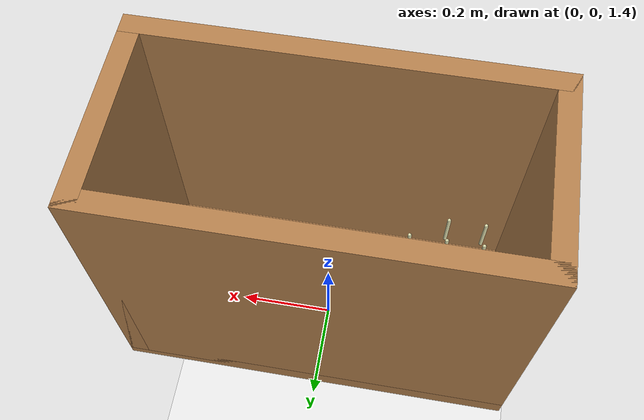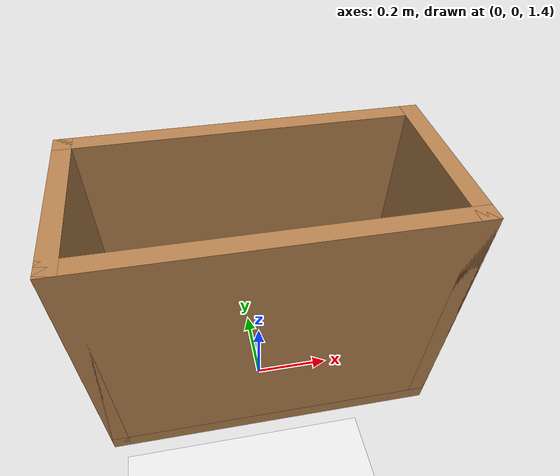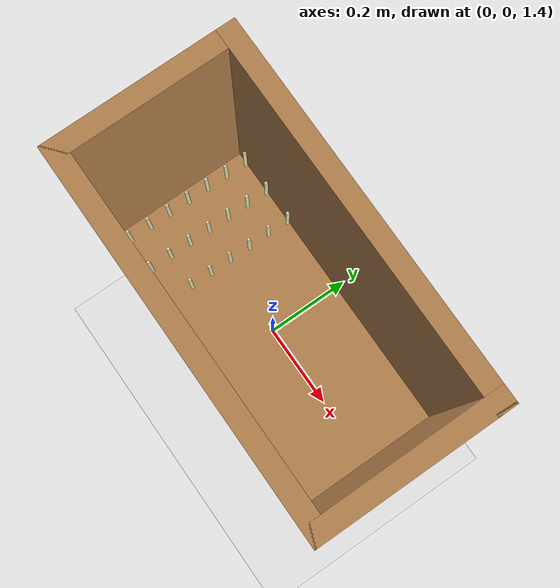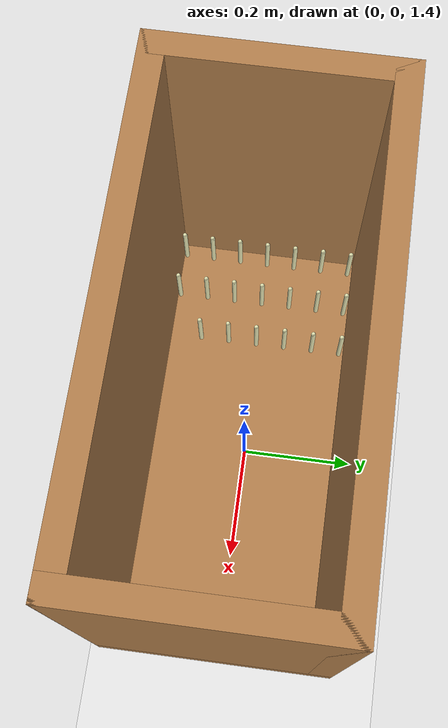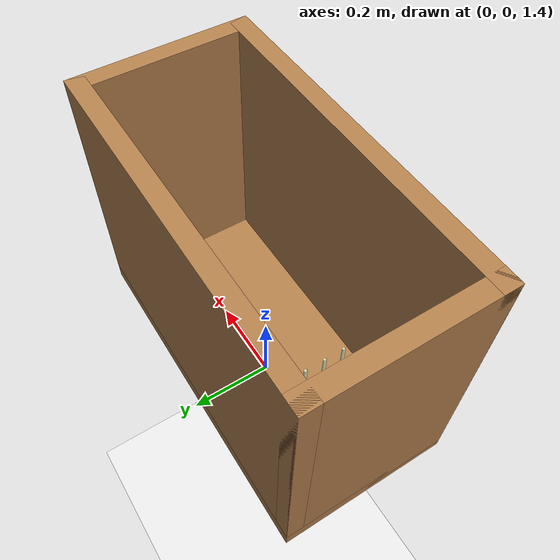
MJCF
<mujoco model="rods_falling">
    <option timestep="0.002" iterations="20" solver="Newton">
        <flag warmstart="enable" energy="enable" contact="enable" />
    </option>

    <asset>
        <material name="floor" rgba="0.9 0.9 0.9 1" reflectance="0.2" />
        <material name="box" rgba="0.7 0.5 0.3 1" />
        <material name="rod" rgba="0.9 0.9 0.7 1" />
    </asset>

    <default>
        <geom friction="1.0 0.005 0.0001" condim="6" />
        <joint damping="0.05" />
    </default>

    <worldbody>
        <!-- Floor -->
        <geom name="floor" type="plane" size="3 3 0.1" pos="0 0 0" material="floor" />

        <!-- Fixed light sources -->
        <light pos="0 0 3" dir="0 0 -1" diffuse="0.7 0.7 0.7" specular="0.3 0.3 0.3" />
        <light pos="3 3 3" dir="-1 -1 -1" diffuse="0.3 0.3 0.3" specular="0.1 0.1 0.1" />

        <!-- Box - created with 5 sides (no top) -->
        <body name="box" pos="0 0 1.5">
            <!-- Box base -->
            <geom name="box_base" type="box" size="0.4 0.2 0.02" pos="0 0 0" material="box" />
            <!-- Box sides -->
            <geom name="box_side1" type="box" size="0.4 0.02 0.3" pos="0 0.18 0.3" material="box" />
            <geom name="box_side2" type="box" size="0.4 0.02 0.3" pos="0 -0.18 0.3" material="box" />
            <geom name="box_side3" type="box" size="0.02 0.2 0.3" pos="0.38 0 0.3" material="box" />
            <geom name="box_side4" type="box" size="0.02 0.2 0.3" pos="-0.38 0 0.3" material="box" />

            <!-- Joint to tilt the box after a delay -->
            <joint name="box_hinge" type="hinge" axis="1 0 0" limited="true" range="-1.57 0" />
        </body>

        <!-- Rods (20 thin cylinders) -->
        <body name="rod1" pos="-0.32 0.15 1.6">
            <freejoint/>
            <geom name="rod1_geom" type="capsule" size="0.004 0.04" material="rod" />
        </body>
        <body name="rod2" pos="-0.32 0.1 1.6">
            <freejoint/>
            <geom name="rod2_geom" type="capsule" size="0.004 0.04" material="rod" />
        </body>
        <body name="rod3" pos="-0.32 0.05 1.6">
            <freejoint/>
            <geom name="rod3_geom" type="capsule" size="0.004 0.04" material="rod" />
        </body>
        <body name="rod4" pos="-0.32 0 1.6">
            <freejoint/>
            <geom name="rod4_geom" type="capsule" size="0.004 0.04" material="rod" />
        </body>
        <body name="rod5" pos="-0.32 -0.05 1.6">
            <freejoint/>
            <geom name="rod5_geom" type="capsule" size="0.004 0.04" material="rod" />
        </body>
        <body name="rod6" pos="-0.32 -0.1 1.6">
            <freejoint/>
            <geom name="rod6_geom" type="capsule" size="0.004 0.04" material="rod" />
        </body>
        <body name="rod7" pos="-0.32 -0.15 1.6">
            <freejoint/>
            <geom name="rod7_geom" type="capsule" size="0.004 0.04" material="rod" />
        </body>
        <body name="rod8" pos="-0.24 0.15 1.6">
            <freejoint/>
            <geom name="rod8_geom" type="capsule" size="0.004 0.04" material="rod" />
        </body>
        <body name="rod9" pos="-0.24 0.1 1.6">
            <freejoint/>
            <geom name="rod9_geom" type="capsule" size="0.004 0.04" material="rod" />
        </body>
        <body name="rod10" pos="-0.24 0.05 1.6">
            <freejoint/>
            <geom name="rod10_geom" type="capsule" size="0.004 0.04" material="rod" />
        </body>
        <body name="rod11" pos="-0.24 0 1.6">
            <freejoint/>
            <geom name="rod11_geom" type="capsule" size="0.004 0.04" material="rod" />
        </body>
        <body name="rod12" pos="-0.24 -0.05 1.6">
            <freejoint/>
            <geom name="rod12_geom" type="capsule" size="0.004 0.04" material="rod" />
        </body>
        <body name="rod13" pos="-0.24 -0.1 1.6">
            <freejoint/>
            <geom name="rod13_geom" type="capsule" size="0.004 0.04" material="rod" />
        </body>
        <body name="rod14" pos="-0.24 -0.15 1.6">
            <freejoint/>
            <geom name="rod14_geom" type="capsule" size="0.004 0.04" material="rod" />
        </body>
        <body name="rod15" pos="-0.16 0.15 1.6">
            <freejoint/>
            <geom name="rod15_geom" type="capsule" size="0.004 0.04" material="rod" />
        </body>
        <body name="rod16" pos="-0.16 0.1 1.6">
            <freejoint/>
            <geom name="rod16_geom" type="capsule" size="0.004 0.04" material="rod" />
        </body>
        <body name="rod17" pos="-0.16 0.05 1.6">
            <freejoint/>
            <geom name="rod17_geom" type="capsule" size="0.004 0.04" material="rod" />
        </body>
        <body name="rod18" pos="-0.16 0 1.6">
            <freejoint/>
            <geom name="rod18_geom" type="capsule" size="0.004 0.04" material="rod" />
        </body>
        <body name="rod19" pos="-0.16 -0.05 1.6">
            <freejoint/>
            <geom name="rod19_geom" type="capsule" size="0.004 0.04" material="rod" />
        </body>
        <body name="rod20" pos="-0.16 -0.1 1.6">
            <freejoint/>
            <geom name="rod20_geom" type="capsule" size="0.004 0.04" material="rod" />
        </body>
    </worldbody>

    <actuator>
        <!-- Actuator to tilt the box - controlled by time -->
        <general name="box_tilt" joint="box_hinge" ctrllimited="true" ctrlrange="-1.57 0" gainprm="10" biasprm="0 -1 -1.57" biastype="affine"/>
    </actuator>
</mujoco>
